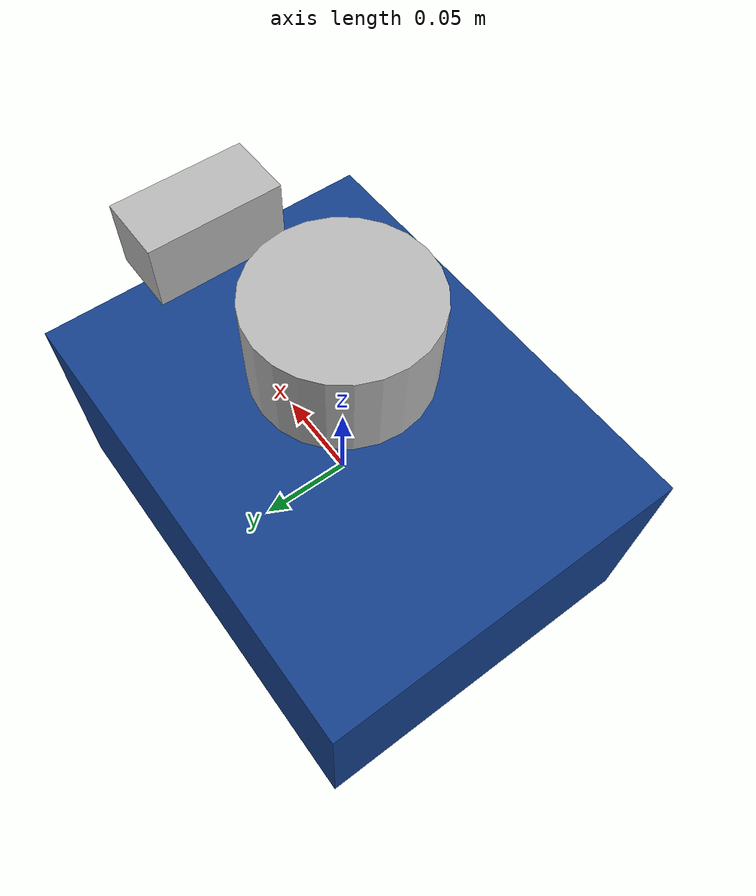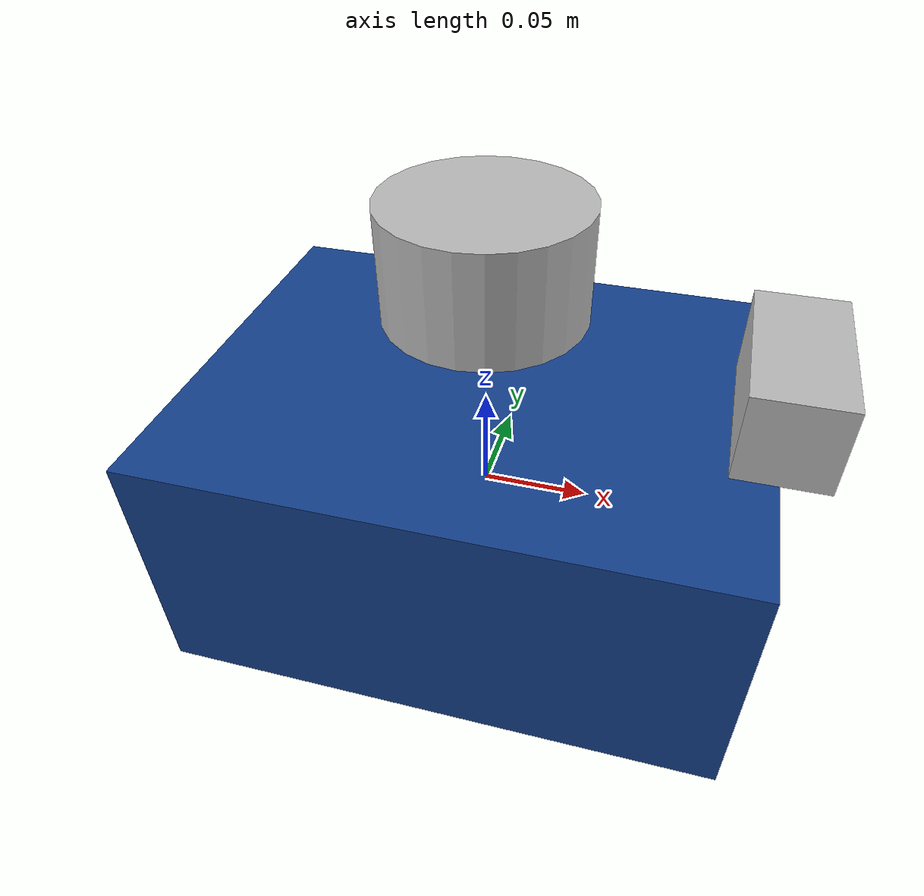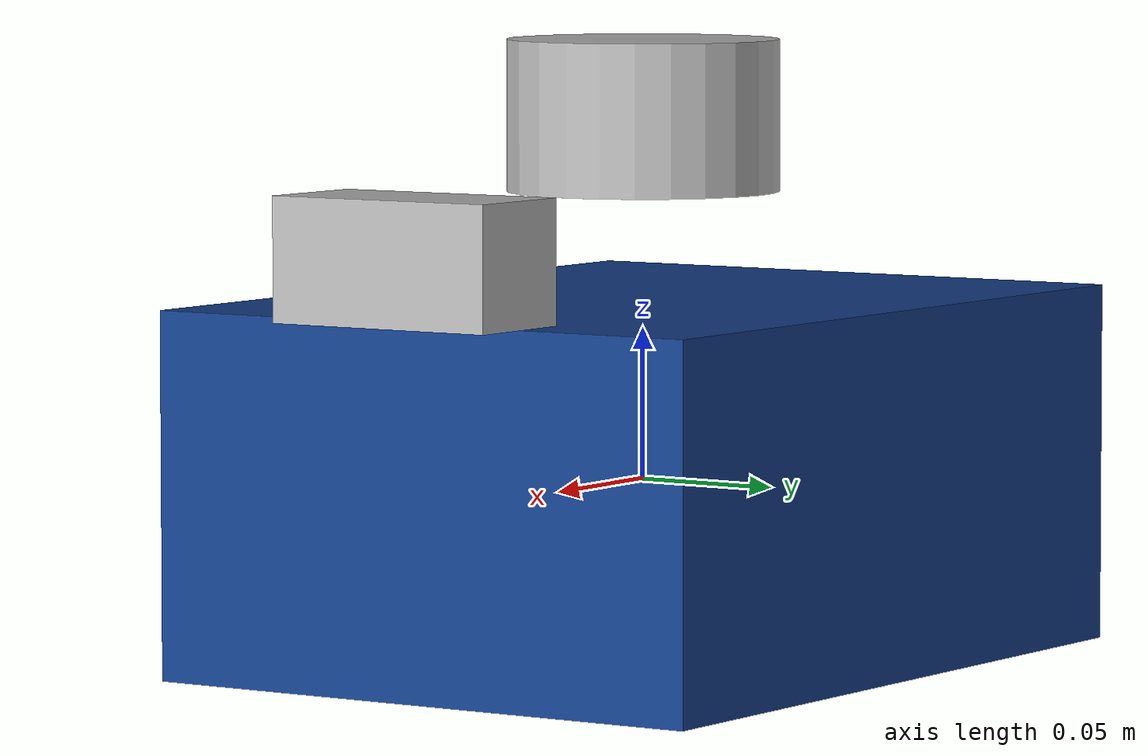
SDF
<?xml version="1.0"?>
<sdf version="1.10">
  <model name="sensor_core">
    <self_collide>true</self_collide>
    <link name="base_link">
      <inertial><mass>7.4</mass><inertia><ixx>0.09</ixx><iyy>0.12</iyy><izz>0.15</izz></inertia></inertial>
      <visual name="body_visual"><geometry><box><size>0.26 0.20 0.12</size></box></geometry><material><diffuse>0.08 0.25 0.55 1</diffuse></material></visual>
      <collision name="body_collision"><geometry><box><size>0.26 0.20 0.12</size></box></geometry></collision>
      <sensor name="imu" type="imu"><topic>/imu</topic><update_rate>100</update_rate><always_on>true</always_on></sensor>
    </link>
    <link name="lidar_link"><pose relative_to="base_link">0 0 0.12 0 0 0</pose><visual name="visual"><geometry><cylinder><radius>0.045</radius><length>0.05</length></cylinder></geometry></visual>
      <sensor name="lidar" type="gpu_lidar"><topic>/scan</topic><update_rate>15</update_rate><lidar><scan><horizontal><samples>720</samples><resolution>1</resolution><min_angle>-3.14159</min_angle><max_angle>3.14159</max_angle></horizontal></scan><range><min>0.08</min><max>15</max><resolution>0.01</resolution></range><noise><type>gaussian</type><mean>0</mean><stddev>0.006</stddev></noise></lidar><always_on>true</always_on><visualize>true</visualize></sensor>
    </link>
    <joint name="lidar_joint" type="fixed"><parent>base_link</parent><child>lidar_link</child></joint>
    <link name="camera_link"><pose relative_to="base_link">0.13 0 0.08 0 0 0</pose>
      <visual name="visual"><geometry><box><size>0.04 0.08 0.04</size></box></geometry></visual>
      <sensor name="rgbd" type="rgbd_camera"><topic>/rgbd_camera</topic><update_rate>15</update_rate>
        <camera><horizontal_fov>1.22</horizontal_fov><image><width>640</width><height>480</height><format>R8G8B8</format></image><clip><near>0.12</near><far>8.0</far></clip><depth_camera><clip><near>0.12</near><far>8.0</far></clip></depth_camera></camera>
        <always_on>true</always_on><visualize>false</visualize>
      </sensor>
    </link>
    <joint name="camera_joint" type="fixed"><parent>base_link</parent><child>camera_link</child></joint>
    <link name="connector_sensor_link">
      <pose relative_to="base_link">0 0 -0.08 0 0 0</pose>
      <sensor name="connector_front" type="logical_camera">
        <topic>/connector_sensor/front</topic><update_rate>20</update_rate><always_on>true</always_on>
        <logical_camera><near>0.05</near><far>1.2</far><horizontal_fov>1.8</horizontal_fov><aspect_ratio>1.0</aspect_ratio></logical_camera>
      </sensor>
      <sensor name="connector_left" type="logical_camera">
        <pose>0 0 0 0 0 1.5707963</pose><topic>/connector_sensor/left</topic>
        <update_rate>20</update_rate><always_on>true</always_on>
        <logical_camera><near>0.05</near><far>1.2</far><horizontal_fov>1.8</horizontal_fov><aspect_ratio>1.0</aspect_ratio></logical_camera>
      </sensor>
      <sensor name="connector_rear" type="logical_camera">
        <pose>0 0 0 0 0 3.1415927</pose><topic>/connector_sensor/rear</topic>
        <update_rate>20</update_rate><always_on>true</always_on>
        <logical_camera><near>0.05</near><far>1.2</far><horizontal_fov>1.8</horizontal_fov><aspect_ratio>1.0</aspect_ratio></logical_camera>
      </sensor>
      <sensor name="connector_right" type="logical_camera">
        <pose>0 0 0 0 0 -1.5707963</pose><topic>/connector_sensor/right</topic>
        <update_rate>20</update_rate><always_on>true</always_on>
        <logical_camera><near>0.05</near><far>1.2</far><horizontal_fov>1.8</horizontal_fov><aspect_ratio>1.0</aspect_ratio></logical_camera>
      </sensor>
    </link>
    <joint name="connector_sensor_joint" type="fixed"><parent>base_link</parent><child>connector_sensor_link</child></joint>
    <plugin filename="gz-sim-odometry-publisher-system" name="gz::sim::systems::OdometryPublisher">
      <odom_frame>odom</odom_frame><robot_base_frame>core/base_link</robot_base_frame>
      <odom_topic>/odom</odom_topic><tf_topic>/tf</tf_topic><odom_publish_frequency>50</odom_publish_frequency><dimensions>2</dimensions>
    </plugin>
  </model>
</sdf>
